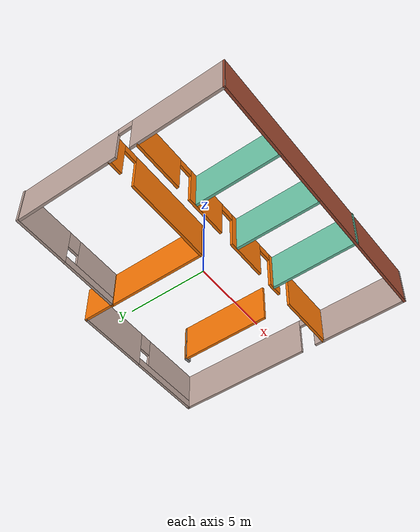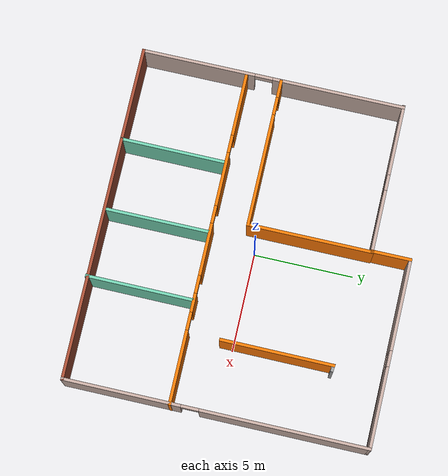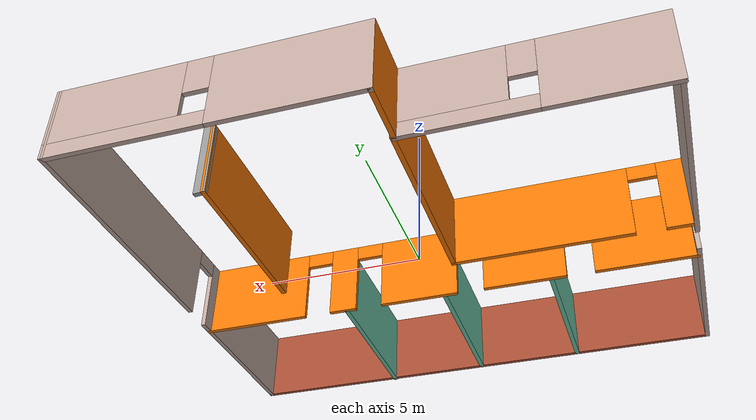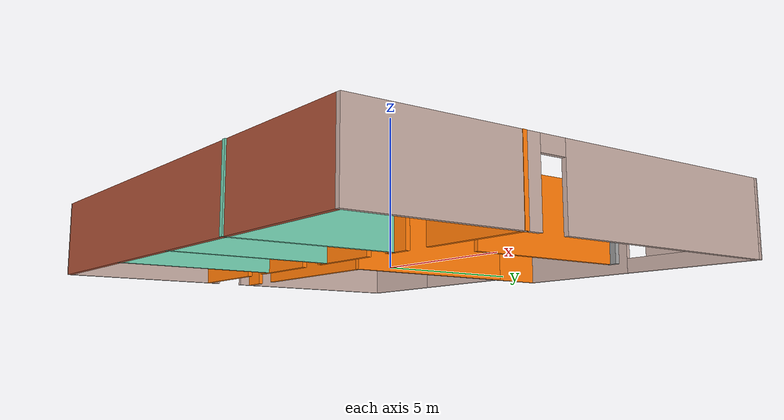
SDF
<?xml version='1.0'?>
<sdf version='1.6'>
  <model name='P1Bulding'>
    <pose frame=''>-0.021819 -0.057311 0 0 -0 0</pose>
    <link name='Wall_10'>
      <pose frame=''>-4.71668 5.68218 0 0 -0 0</pose>
      <visual name='Wall_10_Visual_0'>
        <pose frame=''>-1.99744 0 1.25 0 -0 0</pose>
        <geometry>
          <box>
            <size>3.61726 0.15 2.5</size>
          </box>
        </geometry>
        <material>
          <script>
            <uri>file://media/materials/scripts/gazebo.material</uri>
            <name>Gazebo/Grey</name>
          </script>
          <ambient>0.760784 0.662745 0.627451 1</ambient>
        </material>
        <meta>
          <layer>0</layer>
        </meta>
      </visual>
      <collision name='Wall_10_Collision_0'>
        <geometry>
          <box>
            <size>3.61726 0.15 2.5</size>
          </box>
        </geometry>
        <pose frame=''>-1.99744 0 1.25 0 -0 0</pose>
      </collision>
      <visual name='Wall_10_Visual_1'>
        <pose frame=''>1.80863 0 0.25 0 -0 0</pose>
        <geometry>
          <box>
            <size>3.99487 0.15 0.5</size>
          </box>
        </geometry>
        <material>
          <script>
            <uri>file://media/materials/scripts/gazebo.material</uri>
            <name>Gazebo/Grey</name>
          </script>
          <ambient>0.760784 0.662745 0.627451 1</ambient>
        </material>
        <meta>
          <layer>0</layer>
        </meta>
      </visual>
      <collision name='Wall_10_Collision_1'>
        <geometry>
          <box>
            <size>3.99487 0.15 0.5</size>
          </box>
        </geometry>
        <pose frame=''>1.80863 0 0.25 0 -0 0</pose>
      </collision>
      <visual name='Wall_10_Visual_2'>
        <pose frame=''>2.20863 0 1.5 0 -0 0</pose>
        <geometry>
          <box>
            <size>3.19488 0.15 2</size>
          </box>
        </geometry>
        <material>
          <script>
            <uri>file://media/materials/scripts/gazebo.material</uri>
            <name>Gazebo/Grey</name>
          </script>
          <ambient>0.760784 0.662745 0.627451 1</ambient>
        </material>
        <meta>
          <layer>0</layer>
        </meta>
      </visual>
      <collision name='Wall_10_Collision_2'>
        <geometry>
          <box>
            <size>3.19488 0.15 2</size>
          </box>
        </geometry>
        <pose frame=''>2.20863 0 1.5 0 -0 0</pose>
      </collision>
      <visual name='Wall_10_Visual_3'>
        <pose frame=''>0.211193 0 1.9 0 -0 0</pose>
        <geometry>
          <box>
            <size>0.8 0.15 1.2</size>
          </box>
        </geometry>
        <material>
          <script>
            <uri>file://media/materials/scripts/gazebo.material</uri>
            <name>Gazebo/Grey</name>
          </script>
          <ambient>0.760784 0.662745 0.627451 1</ambient>
        </material>
        <meta>
          <layer>0</layer>
        </meta>
      </visual>
      <collision name='Wall_10_Collision_3'>
        <geometry>
          <box>
            <size>0.8 0.15 1.2</size>
          </box>
        </geometry>
        <pose frame=''>0.211193 0 1.9 0 -0 0</pose>
      </collision>
    </link>
    <link name='Wall_11'>
      <collision name='Wall_11_Collision'>
        <geometry>
          <box>
            <size>2.06079 0.15 2.5</size>
          </box>
        </geometry>
        <pose frame=''>0 0 1.25 0 -0 0</pose>
      </collision>
      <visual name='Wall_11_Visual'>
        <pose frame=''>0 0 1.25 0 -0 0</pose>
        <geometry>
          <box>
            <size>2.06079 0.15 2.5</size>
          </box>
        </geometry>
        <material>
          <script>
            <uri>file://media/materials/scripts/gazebo.material</uri>
            <name>Gazebo/Grey</name>
          </script>
          <ambient>0.996078 0.47451 0.0196078 1</ambient>
        </material>
        <meta>
          <layer>0</layer>
        </meta>
      </visual>
      <pose frame=''>-0.985615 6.63757 0 0 -0 1.5708</pose>
    </link>
    <link name='Wall_12'>
      <pose frame=''>3.73102 7.59297 0 0 -0 0</pose>
      <visual name='Wall_12_Visual_0'>
        <pose frame=''>-2.47011 0 1.25 0 -0 0</pose>
        <geometry>
          <box>
            <size>4.64305 0.15 2.5</size>
          </box>
        </geometry>
        <material>
          <script>
            <uri>file://media/materials/scripts/gazebo.material</uri>
            <name>Gazebo/Grey</name>
          </script>
          <ambient>0.760784 0.662745 0.627451 1</ambient>
        </material>
        <meta>
          <layer>0</layer>
        </meta>
      </visual>
      <collision name='Wall_12_Collision_0'>
        <geometry>
          <box>
            <size>4.64305 0.15 2.5</size>
          </box>
        </geometry>
        <pose frame=''>-2.47011 0 1.25 0 -0 0</pose>
      </collision>
      <visual name='Wall_12_Visual_1'>
        <pose frame=''>2.32153 0 0.25 0 -0 0</pose>
        <geometry>
          <box>
            <size>4.94021 0.15 0.5</size>
          </box>
        </geometry>
        <material>
          <script>
            <uri>file://media/materials/scripts/gazebo.material</uri>
            <name>Gazebo/Grey</name>
          </script>
          <ambient>0.760784 0.662745 0.627451 1</ambient>
        </material>
        <meta>
          <layer>0</layer>
        </meta>
      </visual>
      <collision name='Wall_12_Collision_1'>
        <geometry>
          <box>
            <size>4.94021 0.15 0.5</size>
          </box>
        </geometry>
        <pose frame=''>2.32153 0 0.25 0 -0 0</pose>
      </collision>
      <visual name='Wall_12_Visual_2'>
        <pose frame=''>2.72153 0 1.5 0 -0 0</pose>
        <geometry>
          <box>
            <size>4.14021 0.15 2</size>
          </box>
        </geometry>
        <material>
          <script>
            <uri>file://media/materials/scripts/gazebo.material</uri>
            <name>Gazebo/Grey</name>
          </script>
          <ambient>0.760784 0.662745 0.627451 1</ambient>
        </material>
        <meta>
          <layer>0</layer>
        </meta>
      </visual>
      <collision name='Wall_12_Collision_2'>
        <geometry>
          <box>
            <size>4.14021 0.15 2</size>
          </box>
        </geometry>
        <pose frame=''>2.72153 0 1.5 0 -0 0</pose>
      </collision>
      <visual name='Wall_12_Visual_3'>
        <pose frame=''>0.25142 0 1.9 0 -0 0</pose>
        <geometry>
          <box>
            <size>0.8 0.15 1.2</size>
          </box>
        </geometry>
        <material>
          <script>
            <uri>file://media/materials/scripts/gazebo.material</uri>
            <name>Gazebo/Grey</name>
          </script>
          <ambient>0.760784 0.662745 0.627451 1</ambient>
        </material>
        <meta>
          <layer>0</layer>
        </meta>
      </visual>
      <collision name='Wall_12_Collision_3'>
        <geometry>
          <box>
            <size>0.8 0.15 1.2</size>
          </box>
        </geometry>
        <pose frame=''>0.25142 0 1.9 0 -0 0</pose>
      </collision>
    </link>
    <link name='Wall_13'>
      <pose frame=''>8.43759 0.020207 0 0 0 -1.57212</pose>
      <visual name='Wall_13_Visual_0'>
        <pose frame=''>-3.4103 0 1.25 0 -0 0</pose>
        <geometry>
          <box>
            <size>8.47494 0.15 2.5</size>
          </box>
        </geometry>
        <material>
          <script>
            <uri>file://media/materials/scripts/gazebo.material</uri>
            <name>Gazebo/Grey</name>
          </script>
          <ambient>0.760784 0.662745 0.627451 1</ambient>
        </material>
        <meta>
          <layer>0</layer>
        </meta>
      </visual>
      <collision name='Wall_13_Collision_0'>
        <geometry>
          <box>
            <size>8.47494 0.15 2.5</size>
          </box>
        </geometry>
        <pose frame=''>-3.4103 0 1.25 0 -0 0</pose>
      </collision>
      <visual name='Wall_13_Visual_1'>
        <pose frame=''>4.68747 0 1.25 0 -0 0</pose>
        <geometry>
          <box>
            <size>5.9206 0.15 2.5</size>
          </box>
        </geometry>
        <material>
          <script>
            <uri>file://media/materials/scripts/gazebo.material</uri>
            <name>Gazebo/Grey</name>
          </script>
          <ambient>0.760784 0.662745 0.627451 1</ambient>
        </material>
        <meta>
          <layer>0</layer>
        </meta>
      </visual>
      <collision name='Wall_13_Collision_1'>
        <geometry>
          <box>
            <size>5.9206 0.15 2.5</size>
          </box>
        </geometry>
        <pose frame=''>4.68747 0 1.25 0 -0 0</pose>
      </collision>
      <visual name='Wall_13_Visual_2'>
        <pose frame=''>1.27717 0 2.25 0 -0 0</pose>
        <geometry>
          <box>
            <size>0.9 0.15 0.5</size>
          </box>
        </geometry>
        <material>
          <script>
            <uri>file://media/materials/scripts/gazebo.material</uri>
            <name>Gazebo/Grey</name>
          </script>
          <ambient>0.760784 0.662745 0.627451 1</ambient>
        </material>
        <meta>
          <layer>0</layer>
        </meta>
      </visual>
      <collision name='Wall_13_Collision_2'>
        <geometry>
          <box>
            <size>0.9 0.15 0.5</size>
          </box>
        </geometry>
        <pose frame=''>1.27717 0 2.25 0 -0 0</pose>
      </collision>
    </link>
    <link name='Wall_14'>
      <collision name='Wall_14_Collision'>
        <geometry>
          <box>
            <size>16.9851 0.15 2.5</size>
          </box>
        </geometry>
        <pose frame=''>0 0 1.25 0 -0 0</pose>
      </collision>
      <visual name='Wall_14_Visual'>
        <pose frame=''>0 0 1.25 0 -0 0</pose>
        <geometry>
          <box>
            <size>16.9851 0.15 2.5</size>
          </box>
        </geometry>
        <material>
          <script>
            <uri>file://media/materials/scripts/gazebo.material</uri>
            <name>Gazebo/Bricks</name>
          </script>
          <ambient>1 1 1 1</ambient>
        </material>
        <meta>
          <layer>0</layer>
        </meta>
      </visual>
      <pose frame=''>0.010007 -7.5425 0 0 -0 3.1404</pose>
    </link>
    <link name='Wall_15'>
      <pose frame=''>-8.40752 -0.925131 0 0 -0 1.5708</pose>
      <visual name='Wall_15_Visual_0'>
        <pose frame=''>-3.80249 0 1.25 0 -0 0</pose>
        <geometry>
          <box>
            <size>5.75964 0.15 2.5</size>
          </box>
        </geometry>
        <material>
          <script>
            <uri>file://media/materials/scripts/gazebo.material</uri>
            <name>Gazebo/Grey</name>
          </script>
          <ambient>0.760784 0.662745 0.627451 1</ambient>
        </material>
        <meta>
          <layer>0</layer>
        </meta>
      </visual>
      <collision name='Wall_15_Collision_0'>
        <geometry>
          <box>
            <size>5.75964 0.15 2.5</size>
          </box>
        </geometry>
        <pose frame=''>-3.80249 0 1.25 0 -0 0</pose>
      </collision>
      <visual name='Wall_15_Visual_1'>
        <pose frame=''>3.32982 0 1.25 0 -0 0</pose>
        <geometry>
          <box>
            <size>6.70498 0.15 2.5</size>
          </box>
        </geometry>
        <material>
          <script>
            <uri>file://media/materials/scripts/gazebo.material</uri>
            <name>Gazebo/Grey</name>
          </script>
          <ambient>0.760784 0.662745 0.627451 1</ambient>
        </material>
        <meta>
          <layer>0</layer>
        </meta>
      </visual>
      <collision name='Wall_15_Collision_1'>
        <geometry>
          <box>
            <size>6.70498 0.15 2.5</size>
          </box>
        </geometry>
        <pose frame=''>3.32982 0 1.25 0 -0 0</pose>
      </collision>
      <visual name='Wall_15_Visual_2'>
        <pose frame=''>-0.472669 0 2.25 0 -0 0</pose>
        <geometry>
          <box>
            <size>0.9 0.15 0.5</size>
          </box>
        </geometry>
        <material>
          <script>
            <uri>file://media/materials/scripts/gazebo.material</uri>
            <name>Gazebo/Grey</name>
          </script>
          <ambient>0.760784 0.662745 0.627451 1</ambient>
        </material>
        <meta>
          <layer>0</layer>
        </meta>
      </visual>
      <collision name='Wall_15_Collision_2'>
        <geometry>
          <box>
            <size>0.9 0.15 0.5</size>
          </box>
        </geometry>
        <pose frame=''>-0.472669 0 2.25 0 -0 0</pose>
      </collision>
    </link>
    <link name='Wall_17'>
      <pose frame=''>-4.65634 -0.512803 0 0 -0 0</pose>
      <visual name='Wall_17_Visual_0'>
        <pose frame=''>-3.32982 0 1.25 0 -0 0</pose>
        <geometry>
          <box>
            <size>0.912268 0.15 2.5</size>
          </box>
        </geometry>
        <material>
          <script>
            <uri>file://media/materials/scripts/gazebo.material</uri>
            <name>Gazebo/Grey</name>
          </script>
          <ambient>0.996078 0.47451 0.0196078 1</ambient>
        </material>
        <meta>
          <layer>0</layer>
        </meta>
      </visual>
      <collision name='Wall_17_Collision_0'>
        <geometry>
          <box>
            <size>0.912268 0.15 2.5</size>
          </box>
        </geometry>
        <pose frame=''>-3.32982 0 1.25 0 -0 0</pose>
      </collision>
      <visual name='Wall_17_Visual_1'>
        <pose frame=''>0.906134 0 1.25 0 -0 0</pose>
        <geometry>
          <box>
            <size>5.75964 0.15 2.5</size>
          </box>
        </geometry>
        <material>
          <script>
            <uri>file://media/materials/scripts/gazebo.material</uri>
            <name>Gazebo/Grey</name>
          </script>
          <ambient>0.996078 0.47451 0.0196078 1</ambient>
        </material>
        <meta>
          <layer>0</layer>
        </meta>
      </visual>
      <collision name='Wall_17_Collision_1'>
        <geometry>
          <box>
            <size>5.75964 0.15 2.5</size>
          </box>
        </geometry>
        <pose frame=''>0.906134 0 1.25 0 -0 0</pose>
      </collision>
      <visual name='Wall_17_Visual_2'>
        <pose frame=''>-2.42369 0 2.25 0 -0 0</pose>
        <geometry>
          <box>
            <size>0.9 0.15 0.5</size>
          </box>
        </geometry>
        <material>
          <script>
            <uri>file://media/materials/scripts/gazebo.material</uri>
            <name>Gazebo/Grey</name>
          </script>
          <ambient>0.996078 0.47451 0.0196078 1</ambient>
        </material>
        <meta>
          <layer>0</layer>
        </meta>
      </visual>
      <collision name='Wall_17_Collision_2'>
        <geometry>
          <box>
            <size>0.9 0.15 0.5</size>
          </box>
        </geometry>
        <pose frame=''>-2.42369 0 2.25 0 -0 0</pose>
      </collision>
    </link>
    <link name='Wall_18'>
      <collision name='Wall_18_Collision'>
        <geometry>
          <box>
            <size>6.36509 0.15 2.5</size>
          </box>
        </geometry>
        <pose frame=''>0 0 1.25 0 -0 0</pose>
      </collision>
      <visual name='Wall_18_Visual'>
        <pose frame=''>0 0 1.25 0 -0 0</pose>
        <geometry>
          <box>
            <size>6.36509 0.15 2.5</size>
          </box>
        </geometry>
        <material>
          <script>
            <uri>file://media/materials/scripts/gazebo.material</uri>
            <name>Gazebo/Grey</name>
          </script>
          <ambient>0.996078 0.47451 0.0196078 1</ambient>
        </material>
        <meta>
          <layer>0</layer>
        </meta>
      </visual>
      <pose frame=''>-0.945388 2.59474 0 0 -0 1.5708</pose>
    </link>
    <link name='Wall_20'>
      <collision name='Wall_20_Collision'>
        <geometry>
          <box>
            <size>0.392199 0.15 2.5</size>
          </box>
        </geometry>
        <pose frame=''>0 0 1.25 0 -0 0</pose>
      </collision>
      <visual name='Wall_20_Visual'>
        <pose frame=''>0 0 1.25 0 -0 0</pose>
        <geometry>
          <box>
            <size>0.392199 0.15 2.5</size>
          </box>
        </geometry>
        <material>
          <script>
            <uri>file://media/materials/scripts/gazebo.material</uri>
            <name>Gazebo/Grey</name>
          </script>
          <ambient>1 1 1 1</ambient>
        </material>
        <meta>
          <layer>0</layer>
        </meta>
      </visual>
      <pose frame=''>5.02834 5.02849 0 0 -0 3.05845</pose>
    </link>
    <link name='Wall_21'>
      <collision name='Wall_21_Collision'>
        <geometry>
          <box>
            <size>5.7215 0.15 2.5</size>
          </box>
        </geometry>
        <pose frame=''>0 0 1.25 0 -0 0</pose>
      </collision>
      <visual name='Wall_21_Visual'>
        <pose frame=''>0 0 1.25 0 -0 0</pose>
        <geometry>
          <box>
            <size>5.7215 0.15 2.5</size>
          </box>
        </geometry>
        <material>
          <script>
            <uri>file://media/materials/scripts/gazebo.material</uri>
            <name>Gazebo/Grey</name>
          </script>
          <ambient>0.996078 0.47451 0.0196078 1</ambient>
        </material>
        <meta>
          <layer>0</layer>
        </meta>
      </visual>
      <pose frame=''>4.89761 2.25281 0 0 0 -1.57441</pose>
    </link>
    <link name='Wall_28'>
      <pose frame=''>0.050234 -2.25263 0 0 -0 0.001198</pose>
      <visual name='Wall_28_Visual_0'>
        <pose frame=''>-6.83968 0 1.25 0 -0 0</pose>
        <geometry>
          <box>
            <size>3.26548 0.15 2.5</size>
          </box>
        </geometry>
        <material>
          <script>
            <uri>file://media/materials/scripts/gazebo.material</uri>
            <name>Gazebo/Grey</name>
          </script>
          <ambient>0.996078 0.47451 0.0196078 1</ambient>
        </material>
        <meta>
          <layer>0</layer>
        </meta>
      </visual>
      <collision name='Wall_28_Collision_0'>
        <geometry>
          <box>
            <size>3.26548 0.15 2.5</size>
          </box>
        </geometry>
        <pose frame=''>-6.83968 0 1.25 0 -0 0</pose>
      </collision>
      <visual name='Wall_28_Visual_1'>
        <pose frame=''>-2.93659 0 1.25 0 -0 0</pose>
        <geometry>
          <box>
            <size>2.7407 0.15 2.5</size>
          </box>
        </geometry>
        <material>
          <script>
            <uri>file://media/materials/scripts/gazebo.material</uri>
            <name>Gazebo/Grey</name>
          </script>
          <ambient>0.996078 0.47451 0.0196078 1</ambient>
        </material>
        <meta>
          <layer>0</layer>
        </meta>
      </visual>
      <collision name='Wall_28_Collision_1'>
        <geometry>
          <box>
            <size>2.7407 0.15 2.5</size>
          </box>
        </geometry>
        <pose frame=''>-2.93659 0 1.25 0 -0 0</pose>
      </collision>
      <visual name='Wall_28_Visual_2'>
        <pose frame=''>0.663747 0 1.25 0 -0 0</pose>
        <geometry>
          <box>
            <size>2.65998 0.15 2.5</size>
          </box>
        </geometry>
        <material>
          <script>
            <uri>file://media/materials/scripts/gazebo.material</uri>
            <name>Gazebo/Grey</name>
          </script>
          <ambient>0.996078 0.47451 0.0196078 1</ambient>
        </material>
        <meta>
          <layer>0</layer>
        </meta>
      </visual>
      <collision name='Wall_28_Collision_2'>
        <geometry>
          <box>
            <size>2.65998 0.15 2.5</size>
          </box>
        </geometry>
        <pose frame=''>0.663747 0 1.25 0 -0 0</pose>
      </collision>
      <visual name='Wall_28_Visual_3'>
        <pose frame=''>3.36891 0 1.25 0 -0 0</pose>
        <geometry>
          <box>
            <size>0.950351 0.15 2.5</size>
          </box>
        </geometry>
        <material>
          <script>
            <uri>file://media/materials/scripts/gazebo.material</uri>
            <name>Gazebo/Grey</name>
          </script>
          <ambient>0.996078 0.47451 0.0196078 1</ambient>
        </material>
        <meta>
          <layer>0</layer>
        </meta>
      </visual>
      <collision name='Wall_28_Collision_3'>
        <geometry>
          <box>
            <size>0.950351 0.15 2.5</size>
          </box>
        </geometry>
        <pose frame=''>3.36891 0 1.25 0 -0 0</pose>
      </collision>
      <visual name='Wall_28_Visual_4'>
        <pose frame=''>6.60825 0 1.25 0 -0 0</pose>
        <geometry>
          <box>
            <size>3.72833 0.15 2.5</size>
          </box>
        </geometry>
        <material>
          <script>
            <uri>file://media/materials/scripts/gazebo.material</uri>
            <name>Gazebo/Grey</name>
          </script>
          <ambient>0.996078 0.47451 0.0196078 1</ambient>
        </material>
        <meta>
          <layer>0</layer>
        </meta>
      </visual>
      <collision name='Wall_28_Collision_4'>
        <geometry>
          <box>
            <size>3.72833 0.15 2.5</size>
          </box>
        </geometry>
        <pose frame=''>6.60825 0 1.25 0 -0 0</pose>
      </collision>
      <visual name='Wall_28_Visual_5'>
        <pose frame=''>-4.75694 0 2.25 0 -0 0</pose>
        <geometry>
          <box>
            <size>0.9 0.15 0.5</size>
          </box>
        </geometry>
        <material>
          <script>
            <uri>file://media/materials/scripts/gazebo.material</uri>
            <name>Gazebo/Grey</name>
          </script>
          <ambient>0.996078 0.47451 0.0196078 1</ambient>
        </material>
        <meta>
          <layer>0</layer>
        </meta>
      </visual>
      <collision name='Wall_28_Collision_5'>
        <geometry>
          <box>
            <size>0.9 0.15 0.5</size>
          </box>
        </geometry>
        <pose frame=''>-4.75694 0 2.25 0 -0 0</pose>
      </collision>
      <visual name='Wall_28_Visual_6'>
        <pose frame=''>-1.11624 0 2.25 0 -0 0</pose>
        <geometry>
          <box>
            <size>0.9 0.15 0.5</size>
          </box>
        </geometry>
        <material>
          <script>
            <uri>file://media/materials/scripts/gazebo.material</uri>
            <name>Gazebo/Grey</name>
          </script>
          <ambient>0.996078 0.47451 0.0196078 1</ambient>
        </material>
        <meta>
          <layer>0</layer>
        </meta>
      </visual>
      <collision name='Wall_28_Collision_6'>
        <geometry>
          <box>
            <size>0.9 0.15 0.5</size>
          </box>
        </geometry>
        <pose frame=''>-1.11624 0 2.25 0 -0 0</pose>
      </collision>
      <visual name='Wall_28_Visual_7'>
        <pose frame=''>2.44374 0 2.25 0 -0 0</pose>
        <geometry>
          <box>
            <size>0.9 0.15 0.5</size>
          </box>
        </geometry>
        <material>
          <script>
            <uri>file://media/materials/scripts/gazebo.material</uri>
            <name>Gazebo/Grey</name>
          </script>
          <ambient>0.996078 0.47451 0.0196078 1</ambient>
        </material>
        <meta>
          <layer>0</layer>
        </meta>
      </visual>
      <collision name='Wall_28_Collision_7'>
        <geometry>
          <box>
            <size>0.9 0.15 0.5</size>
          </box>
        </geometry>
        <pose frame=''>2.44374 0 2.25 0 -0 0</pose>
      </collision>
      <visual name='Wall_28_Visual_8'>
        <pose frame=''>4.29409 0 2.25 0 -0 0</pose>
        <geometry>
          <box>
            <size>0.9 0.15 0.5</size>
          </box>
        </geometry>
        <material>
          <script>
            <uri>file://media/materials/scripts/gazebo.material</uri>
            <name>Gazebo/Grey</name>
          </script>
          <ambient>0.996078 0.47451 0.0196078 1</ambient>
        </material>
        <meta>
          <layer>0</layer>
        </meta>
      </visual>
      <collision name='Wall_28_Collision_8'>
        <geometry>
          <box>
            <size>0.9 0.15 0.5</size>
          </box>
        </geometry>
        <pose frame=''>4.29409 0 2.25 0 -0 0</pose>
      </collision>
    </link>
    <link name='Wall_30'>
      <collision name='Wall_30_Collision'>
        <geometry>
          <box>
            <size>5.279 0.15 2.5</size>
          </box>
        </geometry>
        <pose frame=''>0 0 1.25 0 -0 0</pose>
      </collision>
      <visual name='Wall_30_Visual'>
        <pose frame=''>0 0 1.25 0 -0 0</pose>
        <geometry>
          <box>
            <size>5.279 0.15 2.5</size>
          </box>
        </geometry>
        <material>
          <script>
            <uri>file://media/materials/scripts/gazebo.material</uri>
            <name>Gazebo/Grey</name>
          </script>
          <ambient>0.435294 0.796078 0.67451 1</ambient>
        </material>
        <meta>
          <layer>0</layer>
        </meta>
      </visual>
      <pose frame=''>-3.75123 -4.96796 0 0 0 -1.57472</pose>
    </link>
    <link name='Wall_32'>
      <collision name='Wall_32_Collision'>
        <geometry>
          <box>
            <size>5.31919 0.15 2.5</size>
          </box>
        </geometry>
        <pose frame=''>0 0 1.25 0 -0 0</pose>
      </collision>
      <visual name='Wall_32_Visual'>
        <pose frame=''>0 0 1.25 0 -0 0</pose>
        <geometry>
          <box>
            <size>5.31919 0.15 2.5</size>
          </box>
        </geometry>
        <material>
          <script>
            <uri>file://media/materials/scripts/gazebo.material</uri>
            <name>Gazebo/Grey</name>
          </script>
          <ambient>0.435294 0.796078 0.67451 1</ambient>
        </material>
        <meta>
          <layer>0</layer>
        </meta>
      </visual>
      <pose frame=''>-0.160958 -4.94785 0 0 0 -1.5708</pose>
    </link>
    <link name='Wall_36'>
      <collision name='Wall_36_Collision'>
        <geometry>
          <box>
            <size>5.39968 0.15 2.5</size>
          </box>
        </geometry>
        <pose frame=''>0 0 1.25 0 -0 0</pose>
      </collision>
      <visual name='Wall_36_Visual'>
        <pose frame=''>0 0 1.25 0 -0 0</pose>
        <geometry>
          <box>
            <size>5.39968 0.15 2.5</size>
          </box>
        </geometry>
        <material>
          <script>
            <uri>file://media/materials/scripts/gazebo.material</uri>
            <name>Gazebo/Grey</name>
          </script>
          <ambient>0.435294 0.796078 0.67451 1</ambient>
        </material>
        <meta>
          <layer>0</layer>
        </meta>
      </visual>
      <pose frame=''>3.28852 -4.96796 0 0 0 -1.57463</pose>
    </link>
    <static>1</static>
  </model>
</sdf>
